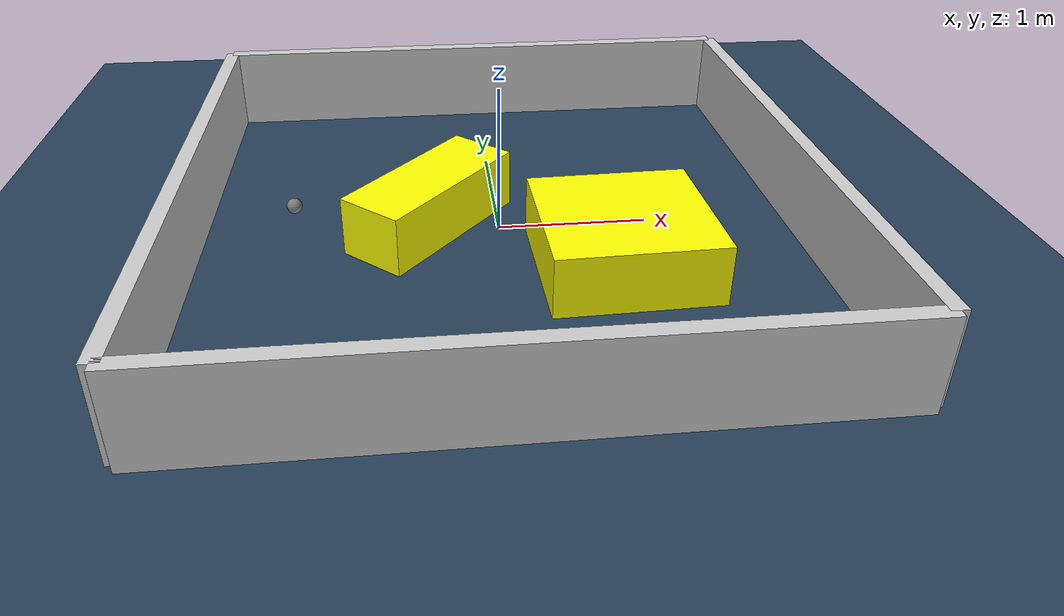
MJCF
<?xml version="1.0" ?>
<mujoco model="generated_environment">
  <option timestep="0.01" integrator="RK4" cone="elliptic"/>
  <default>
    <geom density="1"/>
  </default>
  <asset>
    <texture builtin="gradient" height="3072" rgb1="0.3 0.5 0.7" rgb2="0 0 0" type="skybox" width="512"/>
    <texture builtin="checker" height="300" mark="edge" markrgb="0.8 0.8 0.8" name="groundplane" rgb1="0.2 0.3 0.4" rgb2="0.1 0.2 0.3" type="2d" width="300"/>
    <material name="groundplane" reflectance="0.2" texrepeat="5 5" texture="groundplane" texuniform="true"/>
    <material name="robot" rgba="0.0 1.0 0.0 1"/>
  </asset>
  <worldbody>
    <light dir="0 0 -1" directional="true" pos="0 0 1.5"/>
    <geom condim="4" friction="1.0 0.005 0.001" material="groundplane" name="floor" size="0 0 0.05" type="plane"/>
    <body name="walls">
      <geom name="wall_1" condim="4" pos="-2.0 0.0 0.3" rgba="0.800000011920929 0.800000011920929 0.800000011920929 1.0" size="0.05 2.0 0.3" type="box"/>
      <geom name="wall_2" condim="4" pos="2.0 0.0 0.3" rgba="0.800000011920929 0.800000011920929 0.800000011920929 1.0" size="0.05 2.0 0.3" type="box"/>
      <geom name="wall_3" condim="4" pos="0.0 -2.0 0.3" rgba="0.800000011920929 0.800000011920929 0.800000011920929 1.0" size="2.0 0.05 0.3" type="box"/>
      <geom name="wall_4" condim="4" pos="0.0 2.0 0.3" rgba="0.800000011920929 0.800000011920929 0.800000011920929 1.0" size="2.0 0.05 0.3" type="box"/>
    </body>
    <body name="robot">
      <joint name="joint_x" type="slide" pos="0 0 0" axis="1 0 0"/>
      <joint name="joint_y" type="slide" pos="0 0 0" axis="0 1 0"/>
      <geom name="robot" type="sphere" pos="-1.3572661565183972 0.07530899841858596 0.2" size="0.05" mass="5." friction="1.0 0.005 0.0001" condim="4"/>
      <site name="sensor_ball"/>
    </body>
    <body name="obstacle_1_movable">
      <geom name="obstacle_1_movable" condim="4" pos="-0.46150007908667956 0.053973423064542114 0.2" euler="0 0 228.2683650275926" friction="1.0 0.005 0.001" rgba="1 1 0 1" size="0.5891630651124817 0.23350521730383114 0.2" type="box" mass="0.1"/>
      <joint type="free"/>
    </body>
    <body name="obstacle_2_movable">
      <geom name="obstacle_2_movable" condim="4" pos="0.7156519362208615 -0.5514279484232365 0.2" euler="0 0 271.6865920994156" friction="1.0 0.005 0.001" rgba="1 1 0 1" size="0.5013000193482844 0.5303707294711368 0.2" type="box" mass="0.1"/>
      <joint type="free"/>
    </body>
  </worldbody>
  <actuator>
    <motor name="actuator_x" joint="joint_x" gear="1" ctrlrange="-1 1"/>
    <motor name="actuator_y" joint="joint_y" gear="1" ctrlrange="-1 1"/>
  </actuator>
</mujoco>
